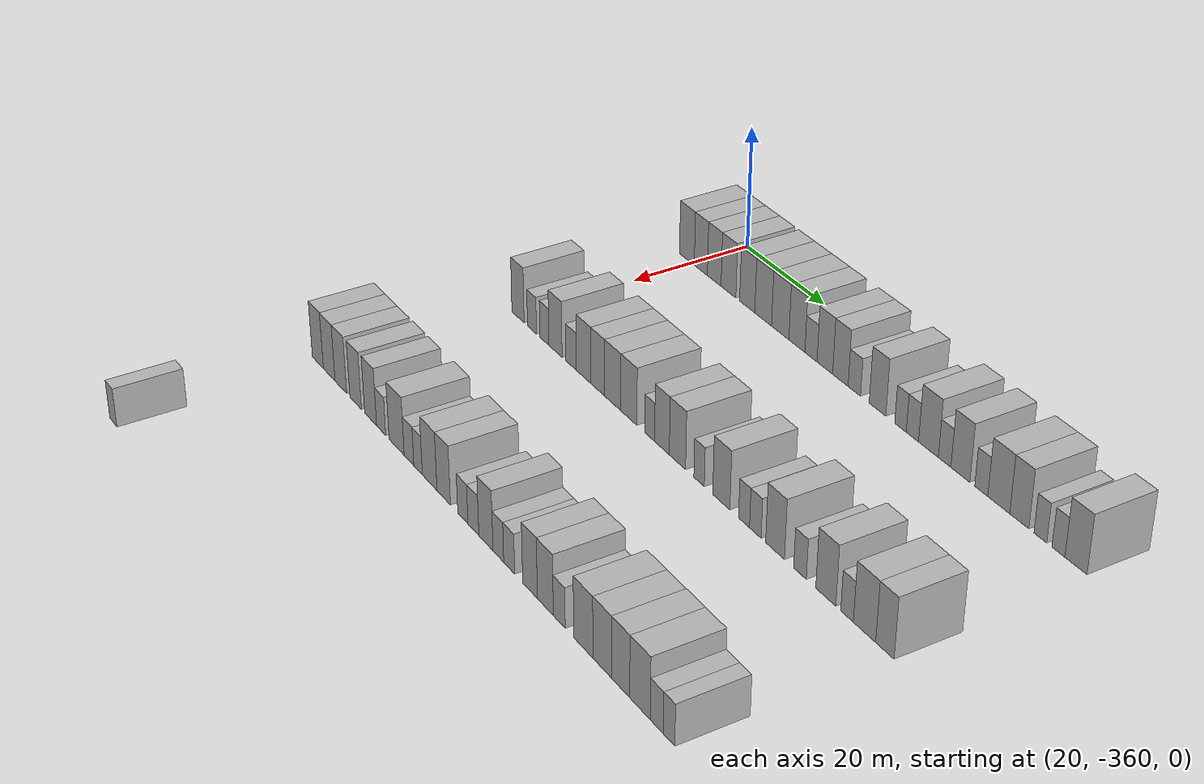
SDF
<sdf version="1.6">
 <world name="default">
  <model name="building_27">
   <static>1</static>
   <pose>25.0000 -361.5062 0 0.000000 0.000000 0.000000</pose>
   <link name="link">
    <pose>0 0 4.50 0 0 0</pose>
    <collision name="collision"><geometry><box><size>10.0000 4.1407 9.0000</size></box></geometry></collision>
    <visual name="visual">
     <cast_shadows>0</cast_shadows>
     <geometry><box><size>10.0000 4.1407 9.0000</size></box></geometry>
     <material>
      <script>
       <uri>model://HANNAS_wall/materials/scripts</uri>
       <uri>model://HANNAS_wall/materials/textures</uri>
       <name>vrc/HANNAS_wall</name>
      </script>
     </material>
    </visual>
   </link>
  </model>
  <model name="building_28">
   <static>1</static>
   <pose>25.0000 -357.6312 0 0.000000 0.000000 0.000000</pose>
   <link name="link">
    <pose>0 0 4.50 0 0 0</pose>
    <collision name="collision"><geometry><box><size>10.0000 3.6091 9.0000</size></box></geometry></collision>
    <visual name="visual">
     <cast_shadows>0</cast_shadows>
     <geometry><box><size>10.0000 3.6091 9.0000</size></box></geometry>
     <material>
      <script>
       <uri>model://HANNAS_wall/materials/scripts</uri>
       <uri>model://HANNAS_wall/materials/textures</uri>
       <name>vrc/HANNAS_wall</name>
      </script>
     </material>
    </visual>
   </link>
  </model>
  <model name="building_29">
   <static>1</static>
   <pose>25.0000 -353.9630 0 0.000000 0.000000 0.000000</pose>
   <link name="link">
    <pose>0 0 4.50 0 0 0</pose>
    <collision name="collision"><geometry><box><size>10.0000 3.7274 9.0000</size></box></geometry></collision>
    <visual name="visual">
     <cast_shadows>0</cast_shadows>
     <geometry><box><size>10.0000 3.7274 9.0000</size></box></geometry>
     <material>
      <script>
       <uri>model://HANNAS_wall/materials/scripts</uri>
       <uri>model://HANNAS_wall/materials/textures</uri>
       <name>vrc/HANNAS_wall</name>
      </script>
     </material>
    </visual>
   </link>
  </model>
  <model name="building_30">
   <static>1</static>
   <pose>25.0000 -350.1197 0 0.000000 0.000000 0.000000</pose>
   <link name="link">
    <pose>0 0 4.50 0 0 0</pose>
    <collision name="collision"><geometry><box><size>10.0000 3.9592 9.0000</size></box></geometry></collision>
    <visual name="visual">
     <cast_shadows>0</cast_shadows>
     <geometry><box><size>10.0000 3.9592 9.0000</size></box></geometry>
     <material>
      <script>
       <uri>model://HANNAS_wall/materials/scripts</uri>
       <uri>model://HANNAS_wall/materials/textures</uri>
       <name>vrc/HANNAS_wall</name>
      </script>
     </material>
    </visual>
   </link>
  </model>
  <model name="building_31">
   <static>1</static>
   <pose>25.0000 -345.1543 0 0.000000 0.000000 0.000000</pose>
   <link name="link">
    <pose>0 0 4.50 0 0 0</pose>
    <collision name="collision"><geometry><box><size>10.0000 3.9717 9.0000</size></box></geometry></collision>
    <visual name="visual">
     <cast_shadows>0</cast_shadows>
     <geometry><box><size>10.0000 3.9717 9.0000</size></box></geometry>
     <material>
      <script>
       <uri>model://HANNAS_wall/materials/scripts</uri>
       <uri>model://HANNAS_wall/materials/textures</uri>
       <name>vrc/HANNAS_wall</name>
      </script>
     </material>
    </visual>
   </link>
  </model>
  <model name="building_32">
   <static>1</static>
   <pose>25.0000 -341.0035 0 0.000000 0.000000 0.000000</pose>
   <link name="link">
    <pose>0 0 4.50 0 0 0</pose>
    <collision name="collision"><geometry><box><size>10.0000 4.3299 9.0000</size></box></geometry></collision>
    <visual name="visual">
     <cast_shadows>0</cast_shadows>
     <geometry><box><size>10.0000 4.3299 9.0000</size></box></geometry>
     <material>
      <script>
       <uri>model://HANNAS_wall/materials/scripts</uri>
       <uri>model://HANNAS_wall/materials/textures</uri>
       <name>vrc/HANNAS_wall</name>
      </script>
     </material>
    </visual>
   </link>
  </model>
  <model name="building_33">
   <static>1</static>
   <pose>25.0000 -336.6456 0 0.000000 0.000000 0.000000</pose>
   <link name="link">
    <pose>0 0 4.50 0 0 0</pose>
    <collision name="collision"><geometry><box><size>10.0000 4.3859 9.0000</size></box></geometry></collision>
    <visual name="visual">
     <cast_shadows>0</cast_shadows>
     <geometry><box><size>10.0000 4.3859 9.0000</size></box></geometry>
     <material>
      <script>
       <uri>model://HANNAS_wall/materials/scripts</uri>
       <uri>model://HANNAS_wall/materials/textures</uri>
       <name>vrc/HANNAS_wall</name>
      </script>
     </material>
    </visual>
   </link>
  </model>
  <model name="building_34">
   <static>1</static>
   <pose>25.0000 -332.4584 0 0.000000 0.000000 0.000000</pose>
   <link name="link">
    <pose>0 0 4.50 0 0 0</pose>
    <collision name="collision"><geometry><box><size>10.0000 3.9885 9.0000</size></box></geometry></collision>
    <visual name="visual">
     <cast_shadows>0</cast_shadows>
     <geometry><box><size>10.0000 3.9885 9.0000</size></box></geometry>
     <material>
      <script>
       <uri>model://HANNAS_wall/materials/scripts</uri>
       <uri>model://HANNAS_wall/materials/textures</uri>
       <name>vrc/HANNAS_wall</name>
      </script>
     </material>
    </visual>
   </link>
  </model>
  <model name="building_35">
   <static>1</static>
   <pose>25.0000 -328.9862 0 0.000000 0.000000 0.000000</pose>
   <link name="link">
    <pose>0 0 3.00 0 0 0</pose>
    <collision name="collision"><geometry><box><size>10.0000 2.9560 6.0000</size></box></geometry></collision>
    <visual name="visual">
     <cast_shadows>0</cast_shadows>
     <geometry><box><size>10.0000 2.9560 6.0000</size></box></geometry>
     <material>
      <script>
       <uri>model://HANNAS_wall/materials/scripts</uri>
       <uri>model://HANNAS_wall/materials/textures</uri>
       <name>vrc/HANNAS_wall</name>
      </script>
     </material>
    </visual>
   </link>
  </model>
  <model name="building_36">
   <static>1</static>
   <pose>25.0000 -325.6257 0 0.000000 0.000000 0.000000</pose>
   <link name="link">
    <pose>0 0 4.50 0 0 0</pose>
    <collision name="collision"><geometry><box><size>10.0000 3.7648 9.0000</size></box></geometry></collision>
    <visual name="visual">
     <cast_shadows>0</cast_shadows>
     <geometry><box><size>10.0000 3.7648 9.0000</size></box></geometry>
     <material>
      <script>
       <uri>model://HANNAS_wall/materials/scripts</uri>
       <uri>model://HANNAS_wall/materials/textures</uri>
       <name>vrc/HANNAS_wall</name>
      </script>
     </material>
    </visual>
   </link>
  </model>
  <model name="building_37">
   <static>1</static>
   <pose>25.0000 -321.9064 0 0.000000 0.000000 0.000000</pose>
   <link name="link">
    <pose>0 0 4.50 0 0 0</pose>
    <collision name="collision"><geometry><box><size>10.0000 3.6739 9.0000</size></box></geometry></collision>
    <visual name="visual">
     <cast_shadows>0</cast_shadows>
     <geometry><box><size>10.0000 3.6739 9.0000</size></box></geometry>
     <material>
      <script>
       <uri>model://HANNAS_wall/materials/scripts</uri>
       <uri>model://HANNAS_wall/materials/textures</uri>
       <name>vrc/HANNAS_wall</name>
      </script>
     </material>
    </visual>
   </link>
  </model>
  <model name="building_38">
   <static>1</static>
   <pose>25.0000 -318.6146 0 0.000000 0.000000 0.000000</pose>
   <link name="link">
    <pose>0 0 3.00 0 0 0</pose>
    <collision name="collision"><geometry><box><size>10.0000 2.9097 6.0000</size></box></geometry></collision>
    <visual name="visual">
     <cast_shadows>0</cast_shadows>
     <geometry><box><size>10.0000 2.9097 6.0000</size></box></geometry>
     <material>
      <script>
       <uri>model://HANNAS_wall/materials/scripts</uri>
       <uri>model://HANNAS_wall/materials/textures</uri>
       <name>vrc/HANNAS_wall</name>
      </script>
     </material>
    </visual>
   </link>
  </model>
  <model name="building_39">
   <static>1</static>
   <pose>25.0000 -313.2614 0 0.000000 0.000000 0.000000</pose>
   <link name="link">
    <pose>0 0 4.50 0 0 0</pose>
    <collision name="collision"><geometry><box><size>10.0000 3.7967 9.0000</size></box></geometry></collision>
    <visual name="visual">
     <cast_shadows>0</cast_shadows>
     <geometry><box><size>10.0000 3.7967 9.0000</size></box></geometry>
     <material>
      <script>
       <uri>model://HANNAS_wall/materials/scripts</uri>
       <uri>model://HANNAS_wall/materials/textures</uri>
       <name>vrc/HANNAS_wall</name>
      </script>
     </material>
    </visual>
   </link>
  </model>
  <model name="building_40">
   <static>1</static>
   <pose>25.0000 -308.0791 0 0.000000 0.000000 0.000000</pose>
   <link name="link">
    <pose>0 0 3.00 0 0 0</pose>
    <collision name="collision"><geometry><box><size>10.0000 2.5677 6.0000</size></box></geometry></collision>
    <visual name="visual">
     <cast_shadows>0</cast_shadows>
     <geometry><box><size>10.0000 2.5677 6.0000</size></box></geometry>
     <material>
      <script>
       <uri>model://HANNAS_wall/materials/scripts</uri>
       <uri>model://HANNAS_wall/materials/textures</uri>
       <name>vrc/HANNAS_wall</name>
      </script>
     </material>
    </visual>
   </link>
  </model>
  <model name="building_41">
   <static>1</static>
   <pose>25.0000 -305.4399 0 0.000000 0.000000 0.000000</pose>
   <link name="link">
    <pose>0 0 3.00 0 0 0</pose>
    <collision name="collision"><geometry><box><size>10.0000 2.7108 6.0000</size></box></geometry></collision>
    <visual name="visual">
     <cast_shadows>0</cast_shadows>
     <geometry><box><size>10.0000 2.7108 6.0000</size></box></geometry>
     <material>
      <script>
       <uri>model://HANNAS_wall/materials/scripts</uri>
       <uri>model://HANNAS_wall/materials/textures</uri>
       <name>vrc/HANNAS_wall</name>
      </script>
     </material>
    </visual>
   </link>
  </model>
  <model name="building_42">
   <static>1</static>
   <pose>25.0000 -301.9377 0 0.000000 0.000000 0.000000</pose>
   <link name="link">
    <pose>0 0 4.50 0 0 0</pose>
    <collision name="collision"><geometry><box><size>10.0000 4.2936 9.0000</size></box></geometry></collision>
    <visual name="visual">
     <cast_shadows>0</cast_shadows>
     <geometry><box><size>10.0000 4.2936 9.0000</size></box></geometry>
     <material>
      <script>
       <uri>model://HANNAS_wall/materials/scripts</uri>
       <uri>model://HANNAS_wall/materials/textures</uri>
       <name>vrc/HANNAS_wall</name>
      </script>
     </material>
    </visual>
   </link>
  </model>
  <model name="building_43">
   <static>1</static>
   <pose>25.0000 -298.4554 0 0.000000 0.000000 0.000000</pose>
   <link name="link">
    <pose>0 0 3.00 0 0 0</pose>
    <collision name="collision"><geometry><box><size>10.0000 2.6709 6.0000</size></box></geometry></collision>
    <visual name="visual">
     <cast_shadows>0</cast_shadows>
     <geometry><box><size>10.0000 2.6709 6.0000</size></box></geometry>
     <material>
      <script>
       <uri>model://HANNAS_wall/materials/scripts</uri>
       <uri>model://HANNAS_wall/materials/textures</uri>
       <name>vrc/HANNAS_wall</name>
      </script>
     </material>
    </visual>
   </link>
  </model>
  <model name="building_44">
   <static>1</static>
   <pose>25.0000 -295.1273 0 0.000000 0.000000 0.000000</pose>
   <link name="link">
    <pose>0 0 4.50 0 0 0</pose>
    <collision name="collision"><geometry><box><size>10.0000 3.9854 9.0000</size></box></geometry></collision>
    <visual name="visual">
     <cast_shadows>0</cast_shadows>
     <geometry><box><size>10.0000 3.9854 9.0000</size></box></geometry>
     <material>
      <script>
       <uri>model://HANNAS_wall/materials/scripts</uri>
       <uri>model://HANNAS_wall/materials/textures</uri>
       <name>vrc/HANNAS_wall</name>
      </script>
     </material>
    </visual>
   </link>
  </model>
  <model name="building_45">
   <static>1</static>
   <pose>25.0000 -290.7953 0 0.000000 0.000000 0.000000</pose>
   <link name="link">
    <pose>0 0 3.00 0 0 0</pose>
    <collision name="collision"><geometry><box><size>10.0000 2.6784 6.0000</size></box></geometry></collision>
    <visual name="visual">
     <cast_shadows>0</cast_shadows>
     <geometry><box><size>10.0000 2.6784 6.0000</size></box></geometry>
     <material>
      <script>
       <uri>model://HANNAS_wall/materials/scripts</uri>
       <uri>model://HANNAS_wall/materials/textures</uri>
       <name>vrc/HANNAS_wall</name>
      </script>
     </material>
    </visual>
   </link>
  </model>
  <model name="building_46">
   <static>1</static>
   <pose>25.0000 -287.2370 0 0.000000 0.000000 0.000000</pose>
   <link name="link">
    <pose>0 0 4.50 0 0 0</pose>
    <collision name="collision"><geometry><box><size>10.0000 4.4383 9.0000</size></box></geometry></collision>
    <visual name="visual">
     <cast_shadows>0</cast_shadows>
     <geometry><box><size>10.0000 4.4383 9.0000</size></box></geometry>
     <material>
      <script>
       <uri>model://HANNAS_wall/materials/scripts</uri>
       <uri>model://HANNAS_wall/materials/textures</uri>
       <name>vrc/HANNAS_wall</name>
      </script>
     </material>
    </visual>
   </link>
  </model>
  <model name="building_47">
   <static>1</static>
   <pose>25.0000 -283.1209 0 0.000000 0.000000 0.000000</pose>
   <link name="link">
    <pose>0 0 4.50 0 0 0</pose>
    <collision name="collision"><geometry><box><size>10.0000 3.7939 9.0000</size></box></geometry></collision>
    <visual name="visual">
     <cast_shadows>0</cast_shadows>
     <geometry><box><size>10.0000 3.7939 9.0000</size></box></geometry>
     <material>
      <script>
       <uri>model://HANNAS_wall/materials/scripts</uri>
       <uri>model://HANNAS_wall/materials/textures</uri>
       <name>vrc/HANNAS_wall</name>
      </script>
     </material>
    </visual>
   </link>
  </model>
  <model name="building_48">
   <static>1</static>
   <pose>25.0000 -278.9808 0 0.000000 0.000000 0.000000</pose>
   <link name="link">
    <pose>0 0 3.00 0 0 0</pose>
    <collision name="collision"><geometry><box><size>10.0000 2.4862 6.0000</size></box></geometry></collision>
    <visual name="visual">
     <cast_shadows>0</cast_shadows>
     <geometry><box><size>10.0000 2.4862 6.0000</size></box></geometry>
     <material>
      <script>
       <uri>model://HANNAS_wall/materials/scripts</uri>
       <uri>model://HANNAS_wall/materials/textures</uri>
       <name>vrc/HANNAS_wall</name>
      </script>
     </material>
    </visual>
   </link>
  </model>
  <model name="building_49">
   <static>1</static>
   <pose>25.0000 -275.5052 0 0.000000 0.000000 0.000000</pose>
   <link name="link">
    <pose>0 0 3.00 0 0 0</pose>
    <collision name="collision"><geometry><box><size>10.0000 2.4652 6.0000</size></box></geometry></collision>
    <visual name="visual">
     <cast_shadows>0</cast_shadows>
     <geometry><box><size>10.0000 2.4652 6.0000</size></box></geometry>
     <material>
      <script>
       <uri>model://HANNAS_wall/materials/scripts</uri>
       <uri>model://HANNAS_wall/materials/textures</uri>
       <name>vrc/HANNAS_wall</name>
      </script>
     </material>
    </visual>
   </link>
  </model>
  <model name="building_50">
   <static>1</static>
   <pose>25.0000 -272.1948 0 0.000000 0.000000 0.000000</pose>
   <link name="link">
    <pose>0 0 4.50 0 0 0</pose>
    <collision name="collision"><geometry><box><size>10.0000 4.1556 9.0000</size></box></geometry></collision>
    <visual name="visual">
     <cast_shadows>0</cast_shadows>
     <geometry><box><size>10.0000 4.1556 9.0000</size></box></geometry>
     <material>
      <script>
       <uri>model://HANNAS_wall/materials/scripts</uri>
       <uri>model://HANNAS_wall/materials/textures</uri>
       <name>vrc/HANNAS_wall</name>
      </script>
     </material>
    </visual>
   </link>
  </model>
  <model name="building_258">
   <static>1</static>
   <pose>55.0000 -359.5012 0 0.000000 0.000000 0.000000</pose>
   <link name="link">
    <pose>0 0 4.50 0 0 0</pose>
    <collision name="collision"><geometry><box><size>10.0000 3.6256 9.0000</size></box></geometry></collision>
    <visual name="visual">
     <cast_shadows>0</cast_shadows>
     <geometry><box><size>10.0000 3.6256 9.0000</size></box></geometry>
     <material>
      <script>
       <uri>model://HANNAS_wall/materials/scripts</uri>
       <uri>model://HANNAS_wall/materials/textures</uri>
       <name>vrc/HANNAS_wall</name>
      </script>
     </material>
    </visual>
   </link>
  </model>
  <model name="building_259">
   <static>1</static>
   <pose>55.0000 -355.3773 0 0.000000 0.000000 0.000000</pose>
   <link name="link">
    <pose>0 0 3.00 0 0 0</pose>
    <collision name="collision"><geometry><box><size>10.0000 2.6221 6.0000</size></box></geometry></collision>
    <visual name="visual">
     <cast_shadows>0</cast_shadows>
     <geometry><box><size>10.0000 2.6221 6.0000</size></box></geometry>
     <material>
      <script>
       <uri>model://HANNAS_wall/materials/scripts</uri>
       <uri>model://HANNAS_wall/materials/textures</uri>
       <name>vrc/HANNAS_wall</name>
      </script>
     </material>
    </visual>
   </link>
  </model>
  <model name="building_260">
   <static>1</static>
   <pose>55.0000 -351.7692 0 0.000000 0.000000 0.000000</pose>
   <link name="link">
    <pose>0 0 3.00 0 0 0</pose>
    <collision name="collision"><geometry><box><size>10.0000 2.5942 6.0000</size></box></geometry></collision>
    <visual name="visual">
     <cast_shadows>0</cast_shadows>
     <geometry><box><size>10.0000 2.5942 6.0000</size></box></geometry>
     <material>
      <script>
       <uri>model://HANNAS_wall/materials/scripts</uri>
       <uri>model://HANNAS_wall/materials/textures</uri>
       <name>vrc/HANNAS_wall</name>
      </script>
     </material>
    </visual>
   </link>
  </model>
  <model name="building_261">
   <static>1</static>
   <pose>55.0000 -348.5897 0 0.000000 0.000000 0.000000</pose>
   <link name="link">
    <pose>0 0 4.50 0 0 0</pose>
    <collision name="collision"><geometry><box><size>10.0000 3.7648 9.0000</size></box></geometry></collision>
    <visual name="visual">
     <cast_shadows>0</cast_shadows>
     <geometry><box><size>10.0000 3.7648 9.0000</size></box></geometry>
     <material>
      <script>
       <uri>model://HANNAS_wall/materials/scripts</uri>
       <uri>model://HANNAS_wall/materials/textures</uri>
       <name>vrc/HANNAS_wall</name>
      </script>
     </material>
    </visual>
   </link>
  </model>
  <model name="building_262">
   <static>1</static>
   <pose>55.0000 -344.2099 0 0.000000 0.000000 0.000000</pose>
   <link name="link">
    <pose>0 0 3.00 0 0 0</pose>
    <collision name="collision"><geometry><box><size>10.0000 2.9947 6.0000</size></box></geometry></collision>
    <visual name="visual">
     <cast_shadows>0</cast_shadows>
     <geometry><box><size>10.0000 2.9947 6.0000</size></box></geometry>
     <material>
      <script>
       <uri>model://HANNAS_wall/materials/scripts</uri>
       <uri>model://HANNAS_wall/materials/textures</uri>
       <name>vrc/HANNAS_wall</name>
      </script>
     </material>
    </visual>
   </link>
  </model>
  <model name="building_263">
   <static>1</static>
   <pose>55.0000 -340.7199 0 0.000000 0.000000 0.000000</pose>
   <link name="link">
    <pose>0 0 4.50 0 0 0</pose>
    <collision name="collision"><geometry><box><size>10.0000 3.9853 9.0000</size></box></geometry></collision>
    <visual name="visual">
     <cast_shadows>0</cast_shadows>
     <geometry><box><size>10.0000 3.9853 9.0000</size></box></geometry>
     <material>
      <script>
       <uri>model://HANNAS_wall/materials/scripts</uri>
       <uri>model://HANNAS_wall/materials/textures</uri>
       <name>vrc/HANNAS_wall</name>
      </script>
     </material>
    </visual>
   </link>
  </model>
  <model name="building_264">
   <static>1</static>
   <pose>55.0000 -336.8730 0 0.000000 0.000000 0.000000</pose>
   <link name="link">
    <pose>0 0 4.50 0 0 0</pose>
    <collision name="collision"><geometry><box><size>10.0000 3.7086 9.0000</size></box></geometry></collision>
    <visual name="visual">
     <cast_shadows>0</cast_shadows>
     <geometry><box><size>10.0000 3.7086 9.0000</size></box></geometry>
     <material>
      <script>
       <uri>model://HANNAS_wall/materials/scripts</uri>
       <uri>model://HANNAS_wall/materials/textures</uri>
       <name>vrc/HANNAS_wall</name>
      </script>
     </material>
    </visual>
   </link>
  </model>
  <model name="building_265">
   <static>1</static>
   <pose>55.0000 -332.8600 0 0.000000 0.000000 0.000000</pose>
   <link name="link">
    <pose>0 0 4.50 0 0 0</pose>
    <collision name="collision"><geometry><box><size>10.0000 4.3174 9.0000</size></box></geometry></collision>
    <visual name="visual">
     <cast_shadows>0</cast_shadows>
     <geometry><box><size>10.0000 4.3174 9.0000</size></box></geometry>
     <material>
      <script>
       <uri>model://HANNAS_wall/materials/scripts</uri>
       <uri>model://HANNAS_wall/materials/textures</uri>
       <name>vrc/HANNAS_wall</name>
      </script>
     </material>
    </visual>
   </link>
  </model>
  <model name="building_266">
   <static>1</static>
   <pose>55.0000 -328.6119 0 0.000000 0.000000 0.000000</pose>
   <link name="link">
    <pose>0 0 4.50 0 0 0</pose>
    <collision name="collision"><geometry><box><size>10.0000 4.1789 9.0000</size></box></geometry></collision>
    <visual name="visual">
     <cast_shadows>0</cast_shadows>
     <geometry><box><size>10.0000 4.1789 9.0000</size></box></geometry>
     <material>
      <script>
       <uri>model://HANNAS_wall/materials/scripts</uri>
       <uri>model://HANNAS_wall/materials/textures</uri>
       <name>vrc/HANNAS_wall</name>
      </script>
     </material>
    </visual>
   </link>
  </model>
  <model name="building_267">
   <static>1</static>
   <pose>55.0000 -323.2601 0 0.000000 0.000000 0.000000</pose>
   <link name="link">
    <pose>0 0 3.00 0 0 0</pose>
    <collision name="collision"><geometry><box><size>10.0000 2.5246 6.0000</size></box></geometry></collision>
    <visual name="visual">
     <cast_shadows>0</cast_shadows>
     <geometry><box><size>10.0000 2.5246 6.0000</size></box></geometry>
     <material>
      <script>
       <uri>model://HANNAS_wall/materials/scripts</uri>
       <uri>model://HANNAS_wall/materials/textures</uri>
       <name>vrc/HANNAS_wall</name>
      </script>
     </material>
    </visual>
   </link>
  </model>
  <model name="building_268">
   <static>1</static>
   <pose>55.0000 -320.1571 0 0.000000 0.000000 0.000000</pose>
   <link name="link">
    <pose>0 0 4.50 0 0 0</pose>
    <collision name="collision"><geometry><box><size>10.0000 3.6814 9.0000</size></box></geometry></collision>
    <visual name="visual">
     <cast_shadows>0</cast_shadows>
     <geometry><box><size>10.0000 3.6814 9.0000</size></box></geometry>
     <material>
      <script>
       <uri>model://HANNAS_wall/materials/scripts</uri>
       <uri>model://HANNAS_wall/materials/textures</uri>
       <name>vrc/HANNAS_wall</name>
      </script>
     </material>
    </visual>
   </link>
  </model>
  <model name="building_269">
   <static>1</static>
   <pose>55.0000 -316.3114 0 0.000000 0.000000 0.000000</pose>
   <link name="link">
    <pose>0 0 4.50 0 0 0</pose>
    <collision name="collision"><geometry><box><size>10.0000 4.0102 9.0000</size></box></geometry></collision>
    <visual name="visual">
     <cast_shadows>0</cast_shadows>
     <geometry><box><size>10.0000 4.0102 9.0000</size></box></geometry>
     <material>
      <script>
       <uri>model://HANNAS_wall/materials/scripts</uri>
       <uri>model://HANNAS_wall/materials/textures</uri>
       <name>vrc/HANNAS_wall</name>
      </script>
     </material>
    </visual>
   </link>
  </model>
  <model name="building_270">
   <static>1</static>
   <pose>55.0000 -311.0490 0 0.000000 0.000000 0.000000</pose>
   <link name="link">
    <pose>0 0 3.00 0 0 0</pose>
    <collision name="collision"><geometry><box><size>10.0000 2.5146 6.0000</size></box></geometry></collision>
    <visual name="visual">
     <cast_shadows>0</cast_shadows>
     <geometry><box><size>10.0000 2.5146 6.0000</size></box></geometry>
     <material>
      <script>
       <uri>model://HANNAS_wall/materials/scripts</uri>
       <uri>model://HANNAS_wall/materials/textures</uri>
       <name>vrc/HANNAS_wall</name>
      </script>
     </material>
    </visual>
   </link>
  </model>
  <model name="building_271">
   <static>1</static>
   <pose>55.0000 -305.7863 0 0.000000 0.000000 0.000000</pose>
   <link name="link">
    <pose>0 0 4.50 0 0 0</pose>
    <collision name="collision"><geometry><box><size>10.0000 4.0108 9.0000</size></box></geometry></collision>
    <visual name="visual">
     <cast_shadows>0</cast_shadows>
     <geometry><box><size>10.0000 4.0108 9.0000</size></box></geometry>
     <material>
      <script>
       <uri>model://HANNAS_wall/materials/scripts</uri>
       <uri>model://HANNAS_wall/materials/textures</uri>
       <name>vrc/HANNAS_wall</name>
      </script>
     </material>
    </visual>
   </link>
  </model>
  <model name="building_272">
   <static>1</static>
   <pose>55.0000 -300.5261 0 0.000000 0.000000 0.000000</pose>
   <link name="link">
    <pose>0 0 3.00 0 0 0</pose>
    <collision name="collision"><geometry><box><size>10.0000 2.5096 6.0000</size></box></geometry></collision>
    <visual name="visual">
     <cast_shadows>0</cast_shadows>
     <geometry><box><size>10.0000 2.5096 6.0000</size></box></geometry>
     <material>
      <script>
       <uri>model://HANNAS_wall/materials/scripts</uri>
       <uri>model://HANNAS_wall/materials/textures</uri>
       <name>vrc/HANNAS_wall</name>
      </script>
     </material>
    </visual>
   </link>
  </model>
  <model name="building_273">
   <static>1</static>
   <pose>55.0000 -297.9641 0 0.000000 0.000000 0.000000</pose>
   <link name="link">
    <pose>0 0 3.00 0 0 0</pose>
    <collision name="collision"><geometry><box><size>10.0000 2.6144 6.0000</size></box></geometry></collision>
    <visual name="visual">
     <cast_shadows>0</cast_shadows>
     <geometry><box><size>10.0000 2.6144 6.0000</size></box></geometry>
     <material>
      <script>
       <uri>model://HANNAS_wall/materials/scripts</uri>
       <uri>model://HANNAS_wall/materials/textures</uri>
       <name>vrc/HANNAS_wall</name>
      </script>
     </material>
    </visual>
   </link>
  </model>
  <model name="building_274">
   <static>1</static>
   <pose>55.0000 -293.5788 0 0.000000 0.000000 0.000000</pose>
   <link name="link">
    <pose>0 0 4.50 0 0 0</pose>
    <collision name="collision"><geometry><box><size>10.0000 4.1561 9.0000</size></box></geometry></collision>
    <visual name="visual">
     <cast_shadows>0</cast_shadows>
     <geometry><box><size>10.0000 4.1561 9.0000</size></box></geometry>
     <material>
      <script>
       <uri>model://HANNAS_wall/materials/scripts</uri>
       <uri>model://HANNAS_wall/materials/textures</uri>
       <name>vrc/HANNAS_wall</name>
      </script>
     </material>
    </visual>
   </link>
  </model>
  <model name="building_275">
   <static>1</static>
   <pose>55.0000 -288.1398 0 0.000000 0.000000 0.000000</pose>
   <link name="link">
    <pose>0 0 3.00 0 0 0</pose>
    <collision name="collision"><geometry><box><size>10.0000 2.7219 6.0000</size></box></geometry></collision>
    <visual name="visual">
     <cast_shadows>0</cast_shadows>
     <geometry><box><size>10.0000 2.7219 6.0000</size></box></geometry>
     <material>
      <script>
       <uri>model://HANNAS_wall/materials/scripts</uri>
       <uri>model://HANNAS_wall/materials/textures</uri>
       <name>vrc/HANNAS_wall</name>
      </script>
     </material>
    </visual>
   </link>
  </model>
  <model name="building_276">
   <static>1</static>
   <pose>55.0000 -282.6835 0 0.000000 0.000000 0.000000</pose>
   <link name="link">
    <pose>0 0 4.50 0 0 0</pose>
    <collision name="collision"><geometry><box><size>10.0000 4.1908 9.0000</size></box></geometry></collision>
    <visual name="visual">
     <cast_shadows>0</cast_shadows>
     <geometry><box><size>10.0000 4.1908 9.0000</size></box></geometry>
     <material>
      <script>
       <uri>model://HANNAS_wall/materials/scripts</uri>
       <uri>model://HANNAS_wall/materials/textures</uri>
       <name>vrc/HANNAS_wall</name>
      </script>
     </material>
    </visual>
   </link>
  </model>
  <model name="building_277">
   <static>1</static>
   <pose>55.0000 -278.2982 0 0.000000 0.000000 0.000000</pose>
   <link name="link">
    <pose>0 0 3.00 0 0 0</pose>
    <collision name="collision"><geometry><box><size>10.0000 2.5797 6.0000</size></box></geometry></collision>
    <visual name="visual">
     <cast_shadows>0</cast_shadows>
     <geometry><box><size>10.0000 2.5797 6.0000</size></box></geometry>
     <material>
      <script>
       <uri>model://HANNAS_wall/materials/scripts</uri>
       <uri>model://HANNAS_wall/materials/textures</uri>
       <name>vrc/HANNAS_wall</name>
      </script>
     </material>
    </visual>
   </link>
  </model>
  <model name="building_278">
   <static>1</static>
   <pose>55.0000 -274.7682 0 0.000000 0.000000 0.000000</pose>
   <link name="link">
    <pose>0 0 4.50 0 0 0</pose>
    <collision name="collision"><geometry><box><size>10.0000 4.4804 9.0000</size></box></geometry></collision>
    <visual name="visual">
     <cast_shadows>0</cast_shadows>
     <geometry><box><size>10.0000 4.4804 9.0000</size></box></geometry>
     <material>
      <script>
       <uri>model://HANNAS_wall/materials/scripts</uri>
       <uri>model://HANNAS_wall/materials/textures</uri>
       <name>vrc/HANNAS_wall</name>
      </script>
     </material>
    </visual>
   </link>
  </model>
  <model name="building_279">
   <static>1</static>
   <pose>55.0000 -270.7183 0 0.000000 0.000000 0.000000</pose>
   <link name="link">
    <pose>0 0 4.50 0 0 0</pose>
    <collision name="collision"><geometry><box><size>10.0000 3.6192 9.0000</size></box></geometry></collision>
    <visual name="visual">
     <cast_shadows>0</cast_shadows>
     <geometry><box><size>10.0000 3.6192 9.0000</size></box></geometry>
     <material>
      <script>
       <uri>model://HANNAS_wall/materials/scripts</uri>
       <uri>model://HANNAS_wall/materials/textures</uri>
       <name>vrc/HANNAS_wall</name>
      </script>
     </material>
    </visual>
   </link>
  </model>
  <model name="building_480">
   <static>1</static>
   <pose>85.0000 -362.8318 0 0.000000 0.000000 0.000000</pose>
   <link name="link">
    <pose>0 0 4.50 0 0 0</pose>
    <collision name="collision"><geometry><box><size>10.0000 3.6292 9.0000</size></box></geometry></collision>
    <visual name="visual">
     <cast_shadows>0</cast_shadows>
     <geometry><box><size>10.0000 3.6292 9.0000</size></box></geometry>
     <material>
      <script>
       <uri>model://HANNAS_wall/materials/scripts</uri>
       <uri>model://HANNAS_wall/materials/textures</uri>
       <name>vrc/HANNAS_wall</name>
      </script>
     </material>
    </visual>
   </link>
  </model>
  <model name="building_481">
   <static>1</static>
   <pose>85.0000 -359.1234 0 0.000000 0.000000 0.000000</pose>
   <link name="link">
    <pose>0 0 4.50 0 0 0</pose>
    <collision name="collision"><geometry><box><size>10.0000 3.7874 9.0000</size></box></geometry></collision>
    <visual name="visual">
     <cast_shadows>0</cast_shadows>
     <geometry><box><size>10.0000 3.7874 9.0000</size></box></geometry>
     <material>
      <script>
       <uri>model://HANNAS_wall/materials/scripts</uri>
       <uri>model://HANNAS_wall/materials/textures</uri>
       <name>vrc/HANNAS_wall</name>
      </script>
     </material>
    </visual>
   </link>
  </model>
  <model name="building_482">
   <static>1</static>
   <pose>85.0000 -355.3558 0 0.000000 0.000000 0.000000</pose>
   <link name="link">
    <pose>0 0 4.50 0 0 0</pose>
    <collision name="collision"><geometry><box><size>10.0000 3.7479 9.0000</size></box></geometry></collision>
    <visual name="visual">
     <cast_shadows>0</cast_shadows>
     <geometry><box><size>10.0000 3.7479 9.0000</size></box></geometry>
     <material>
      <script>
       <uri>model://HANNAS_wall/materials/scripts</uri>
       <uri>model://HANNAS_wall/materials/textures</uri>
       <name>vrc/HANNAS_wall</name>
      </script>
     </material>
    </visual>
   </link>
  </model>
  <model name="building_483">
   <static>1</static>
   <pose>85.0000 -350.6639 0 0.000000 0.000000 0.000000</pose>
   <link name="link">
    <pose>0 0 4.50 0 0 0</pose>
    <collision name="collision"><geometry><box><size>10.0000 3.6357 9.0000</size></box></geometry></collision>
    <visual name="visual">
     <cast_shadows>0</cast_shadows>
     <geometry><box><size>10.0000 3.6357 9.0000</size></box></geometry>
     <material>
      <script>
       <uri>model://HANNAS_wall/materials/scripts</uri>
       <uri>model://HANNAS_wall/materials/textures</uri>
       <name>vrc/HANNAS_wall</name>
      </script>
     </material>
    </visual>
   </link>
  </model>
  <model name="building_484">
   <static>1</static>
   <pose>85.0000 -346.0174 0 0.000000 0.000000 0.000000</pose>
   <link name="link">
    <pose>0 0 4.50 0 0 0</pose>
    <collision name="collision"><geometry><box><size>10.0000 3.6574 9.0000</size></box></geometry></collision>
    <visual name="visual">
     <cast_shadows>0</cast_shadows>
     <geometry><box><size>10.0000 3.6574 9.0000</size></box></geometry>
     <material>
      <script>
       <uri>model://HANNAS_wall/materials/scripts</uri>
       <uri>model://HANNAS_wall/materials/textures</uri>
       <name>vrc/HANNAS_wall</name>
      </script>
     </material>
    </visual>
   </link>
  </model>
  <model name="building_485">
   <static>1</static>
   <pose>85.0000 -342.7969 0 0.000000 0.000000 0.000000</pose>
   <link name="link">
    <pose>0 0 3.00 0 0 0</pose>
    <collision name="collision"><geometry><box><size>10.0000 2.7836 6.0000</size></box></geometry></collision>
    <visual name="visual">
     <cast_shadows>0</cast_shadows>
     <geometry><box><size>10.0000 2.7836 6.0000</size></box></geometry>
     <material>
      <script>
       <uri>model://HANNAS_wall/materials/scripts</uri>
       <uri>model://HANNAS_wall/materials/textures</uri>
       <name>vrc/HANNAS_wall</name>
      </script>
     </material>
    </visual>
   </link>
  </model>
  <model name="building_486">
   <static>1</static>
   <pose>85.0000 -338.1726 0 0.000000 0.000000 0.000000</pose>
   <link name="link">
    <pose>0 0 4.50 0 0 0</pose>
    <collision name="collision"><geometry><box><size>10.0000 4.4650 9.0000</size></box></geometry></collision>
    <visual name="visual">
     <cast_shadows>0</cast_shadows>
     <geometry><box><size>10.0000 4.4650 9.0000</size></box></geometry>
     <material>
      <script>
       <uri>model://HANNAS_wall/materials/scripts</uri>
       <uri>model://HANNAS_wall/materials/textures</uri>
       <name>vrc/HANNAS_wall</name>
      </script>
     </material>
    </visual>
   </link>
  </model>
  <model name="building_487">
   <static>1</static>
   <pose>85.0000 -334.5316 0 0.000000 0.000000 0.000000</pose>
   <link name="link">
    <pose>0 0 3.00 0 0 0</pose>
    <collision name="collision"><geometry><box><size>10.0000 2.8170 6.0000</size></box></geometry></collision>
    <visual name="visual">
     <cast_shadows>0</cast_shadows>
     <geometry><box><size>10.0000 2.8170 6.0000</size></box></geometry>
     <material>
      <script>
       <uri>model://HANNAS_wall/materials/scripts</uri>
       <uri>model://HANNAS_wall/materials/textures</uri>
       <name>vrc/HANNAS_wall</name>
      </script>
     </material>
    </visual>
   </link>
  </model>
  <model name="building_488">
   <static>1</static>
   <pose>85.0000 -331.8985 0 0.000000 0.000000 0.000000</pose>
   <link name="link">
    <pose>0 0 3.00 0 0 0</pose>
    <collision name="collision"><geometry><box><size>10.0000 2.4492 6.0000</size></box></geometry></collision>
    <visual name="visual">
     <cast_shadows>0</cast_shadows>
     <geometry><box><size>10.0000 2.4492 6.0000</size></box></geometry>
     <material>
      <script>
       <uri>model://HANNAS_wall/materials/scripts</uri>
       <uri>model://HANNAS_wall/materials/textures</uri>
       <name>vrc/HANNAS_wall</name>
      </script>
     </material>
    </visual>
   </link>
  </model>
  <model name="building_489">
   <static>1</static>
   <pose>85.0000 -328.5956 0 0.000000 0.000000 0.000000</pose>
   <link name="link">
    <pose>0 0 4.50 0 0 0</pose>
    <collision name="collision"><geometry><box><size>10.0000 4.1567 9.0000</size></box></geometry></collision>
    <visual name="visual">
     <cast_shadows>0</cast_shadows>
     <geometry><box><size>10.0000 4.1567 9.0000</size></box></geometry>
     <material>
      <script>
       <uri>model://HANNAS_wall/materials/scripts</uri>
       <uri>model://HANNAS_wall/materials/textures</uri>
       <name>vrc/HANNAS_wall</name>
      </script>
     </material>
    </visual>
   </link>
  </model>
  <model name="building_490">
   <static>1</static>
   <pose>85.0000 -324.6471 0 0.000000 0.000000 0.000000</pose>
   <link name="link">
    <pose>0 0 4.50 0 0 0</pose>
    <collision name="collision"><geometry><box><size>10.0000 3.7403 9.0000</size></box></geometry></collision>
    <visual name="visual">
     <cast_shadows>0</cast_shadows>
     <geometry><box><size>10.0000 3.7403 9.0000</size></box></geometry>
     <material>
      <script>
       <uri>model://HANNAS_wall/materials/scripts</uri>
       <uri>model://HANNAS_wall/materials/textures</uri>
       <name>vrc/HANNAS_wall</name>
      </script>
     </material>
    </visual>
   </link>
  </model>
  <model name="building_491">
   <static>1</static>
   <pose>85.0000 -319.4032 0 0.000000 0.000000 0.000000</pose>
   <link name="link">
    <pose>0 0 3.00 0 0 0</pose>
    <collision name="collision"><geometry><box><size>10.0000 2.7474 6.0000</size></box></geometry></collision>
    <visual name="visual">
     <cast_shadows>0</cast_shadows>
     <geometry><box><size>10.0000 2.7474 6.0000</size></box></geometry>
     <material>
      <script>
       <uri>model://HANNAS_wall/materials/scripts</uri>
       <uri>model://HANNAS_wall/materials/textures</uri>
       <name>vrc/HANNAS_wall</name>
      </script>
     </material>
    </visual>
   </link>
  </model>
  <model name="building_492">
   <static>1</static>
   <pose>85.0000 -316.5611 0 0.000000 0.000000 0.000000</pose>
   <link name="link">
    <pose>0 0 3.00 0 0 0</pose>
    <collision name="collision"><geometry><box><size>10.0000 2.9368 6.0000</size></box></geometry></collision>
    <visual name="visual">
     <cast_shadows>0</cast_shadows>
     <geometry><box><size>10.0000 2.9368 6.0000</size></box></geometry>
     <material>
      <script>
       <uri>model://HANNAS_wall/materials/scripts</uri>
       <uri>model://HANNAS_wall/materials/textures</uri>
       <name>vrc/HANNAS_wall</name>
      </script>
     </material>
    </visual>
   </link>
  </model>
  <model name="building_493">
   <static>1</static>
   <pose>85.0000 -313.2331 0 0.000000 0.000000 0.000000</pose>
   <link name="link">
    <pose>0 0 4.50 0 0 0</pose>
    <collision name="collision"><geometry><box><size>10.0000 3.7192 9.0000</size></box></geometry></collision>
    <visual name="visual">
     <cast_shadows>0</cast_shadows>
     <geometry><box><size>10.0000 3.7192 9.0000</size></box></geometry>
     <material>
      <script>
       <uri>model://HANNAS_wall/materials/scripts</uri>
       <uri>model://HANNAS_wall/materials/textures</uri>
       <name>vrc/HANNAS_wall</name>
      </script>
     </material>
    </visual>
   </link>
  </model>
  <model name="building_494">
   <static>1</static>
   <pose>85.0000 -309.9803 0 0.000000 0.000000 0.000000</pose>
   <link name="link">
    <pose>0 0 3.00 0 0 0</pose>
    <collision name="collision"><geometry><box><size>10.0000 2.7862 6.0000</size></box></geometry></collision>
    <visual name="visual">
     <cast_shadows>0</cast_shadows>
     <geometry><box><size>10.0000 2.7862 6.0000</size></box></geometry>
     <material>
      <script>
       <uri>model://HANNAS_wall/materials/scripts</uri>
       <uri>model://HANNAS_wall/materials/textures</uri>
       <name>vrc/HANNAS_wall</name>
      </script>
     </material>
    </visual>
   </link>
  </model>
  <model name="building_495">
   <static>1</static>
   <pose>85.0000 -307.1886 0 0.000000 0.000000 0.000000</pose>
   <link name="link">
    <pose>0 0 3.00 0 0 0</pose>
    <collision name="collision"><geometry><box><size>10.0000 2.7973 6.0000</size></box></geometry></collision>
    <visual name="visual">
     <cast_shadows>0</cast_shadows>
     <geometry><box><size>10.0000 2.7973 6.0000</size></box></geometry>
     <material>
      <script>
       <uri>model://HANNAS_wall/materials/scripts</uri>
       <uri>model://HANNAS_wall/materials/textures</uri>
       <name>vrc/HANNAS_wall</name>
      </script>
     </material>
    </visual>
   </link>
  </model>
  <model name="building_496">
   <static>1</static>
   <pose>85.0000 -301.9568 0 0.000000 0.000000 0.000000</pose>
   <link name="link">
    <pose>0 0 4.50 0 0 0</pose>
    <collision name="collision"><geometry><box><size>10.0000 3.6663 9.0000</size></box></geometry></collision>
    <visual name="visual">
     <cast_shadows>0</cast_shadows>
     <geometry><box><size>10.0000 3.6663 9.0000</size></box></geometry>
     <material>
      <script>
       <uri>model://HANNAS_wall/materials/scripts</uri>
       <uri>model://HANNAS_wall/materials/textures</uri>
       <name>vrc/HANNAS_wall</name>
      </script>
     </material>
    </visual>
   </link>
  </model>
  <model name="building_497">
   <static>1</static>
   <pose>85.0000 -298.1788 0 0.000000 0.000000 0.000000</pose>
   <link name="link">
    <pose>0 0 4.50 0 0 0</pose>
    <collision name="collision"><geometry><box><size>10.0000 3.8898 9.0000</size></box></geometry></collision>
    <visual name="visual">
     <cast_shadows>0</cast_shadows>
     <geometry><box><size>10.0000 3.8898 9.0000</size></box></geometry>
     <material>
      <script>
       <uri>model://HANNAS_wall/materials/scripts</uri>
       <uri>model://HANNAS_wall/materials/textures</uri>
       <name>vrc/HANNAS_wall</name>
      </script>
     </material>
    </visual>
   </link>
  </model>
  <model name="building_498">
   <static>1</static>
   <pose>85.0000 -294.8108 0 0.000000 0.000000 0.000000</pose>
   <link name="link">
    <pose>0 0 3.00 0 0 0</pose>
    <collision name="collision"><geometry><box><size>10.0000 2.8463 6.0000</size></box></geometry></collision>
    <visual name="visual">
     <cast_shadows>0</cast_shadows>
     <geometry><box><size>10.0000 2.8463 6.0000</size></box></geometry>
     <material>
      <script>
       <uri>model://HANNAS_wall/materials/scripts</uri>
       <uri>model://HANNAS_wall/materials/textures</uri>
       <name>vrc/HANNAS_wall</name>
      </script>
     </material>
    </visual>
   </link>
  </model>
  <model name="building_499">
   <static>1</static>
   <pose>85.0000 -289.1536 0 0.000000 0.000000 0.000000</pose>
   <link name="link">
    <pose>0 0 4.50 0 0 0</pose>
    <collision name="collision"><geometry><box><size>10.0000 4.4682 9.0000</size></box></geometry></collision>
    <visual name="visual">
     <cast_shadows>0</cast_shadows>
     <geometry><box><size>10.0000 4.4682 9.0000</size></box></geometry>
     <material>
      <script>
       <uri>model://HANNAS_wall/materials/scripts</uri>
       <uri>model://HANNAS_wall/materials/textures</uri>
       <name>vrc/HANNAS_wall</name>
      </script>
     </material>
    </visual>
   </link>
  </model>
  <model name="building_500">
   <static>1</static>
   <pose>85.0000 -284.8126 0 0.000000 0.000000 0.000000</pose>
   <link name="link">
    <pose>0 0 4.50 0 0 0</pose>
    <collision name="collision"><geometry><box><size>10.0000 4.2137 9.0000</size></box></geometry></collision>
    <visual name="visual">
     <cast_shadows>0</cast_shadows>
     <geometry><box><size>10.0000 4.2137 9.0000</size></box></geometry>
     <material>
      <script>
       <uri>model://HANNAS_wall/materials/scripts</uri>
       <uri>model://HANNAS_wall/materials/textures</uri>
       <name>vrc/HANNAS_wall</name>
      </script>
     </material>
    </visual>
   </link>
  </model>
  <model name="building_501">
   <static>1</static>
   <pose>85.0000 -280.6700 0 0.000000 0.000000 0.000000</pose>
   <link name="link">
    <pose>0 0 4.50 0 0 0</pose>
    <collision name="collision"><geometry><box><size>10.0000 4.0716 9.0000</size></box></geometry></collision>
    <visual name="visual">
     <cast_shadows>0</cast_shadows>
     <geometry><box><size>10.0000 4.0716 9.0000</size></box></geometry>
     <material>
      <script>
       <uri>model://HANNAS_wall/materials/scripts</uri>
       <uri>model://HANNAS_wall/materials/textures</uri>
       <name>vrc/HANNAS_wall</name>
      </script>
     </material>
    </visual>
   </link>
  </model>
  <model name="building_502">
   <static>1</static>
   <pose>85.0000 -276.3982 0 0.000000 0.000000 0.000000</pose>
   <link name="link">
    <pose>0 0 4.50 0 0 0</pose>
    <collision name="collision"><geometry><box><size>10.0000 4.4720 9.0000</size></box></geometry></collision>
    <visual name="visual">
     <cast_shadows>0</cast_shadows>
     <geometry><box><size>10.0000 4.4720 9.0000</size></box></geometry>
     <material>
      <script>
       <uri>model://HANNAS_wall/materials/scripts</uri>
       <uri>model://HANNAS_wall/materials/textures</uri>
       <name>vrc/HANNAS_wall</name>
      </script>
     </material>
    </visual>
   </link>
  </model>
  <model name="building_503">
   <static>1</static>
   <pose>85.0000 -272.7755 0 0.000000 0.000000 0.000000</pose>
   <link name="link">
    <pose>0 0 3.00 0 0 0</pose>
    <collision name="collision"><geometry><box><size>10.0000 2.7734 6.0000</size></box></geometry></collision>
    <visual name="visual">
     <cast_shadows>0</cast_shadows>
     <geometry><box><size>10.0000 2.7734 6.0000</size></box></geometry>
     <material>
      <script>
       <uri>model://HANNAS_wall/materials/scripts</uri>
       <uri>model://HANNAS_wall/materials/textures</uri>
       <name>vrc/HANNAS_wall</name>
      </script>
     </material>
    </visual>
   </link>
  </model>
  <model name="building_504">
   <static>1</static>
   <pose>85.0000 -270.1755 0 0.000000 0.000000 0.000000</pose>
   <link name="link">
    <pose>0 0 3.00 0 0 0</pose>
    <collision name="collision"><geometry><box><size>10.0000 2.4267 6.0000</size></box></geometry></collision>
    <visual name="visual">
     <cast_shadows>0</cast_shadows>
     <geometry><box><size>10.0000 2.4267 6.0000</size></box></geometry>
     <material>
      <script>
       <uri>model://HANNAS_wall/materials/scripts</uri>
       <uri>model://HANNAS_wall/materials/textures</uri>
       <name>vrc/HANNAS_wall</name>
      </script>
     </material>
    </visual>
   </link>
  </model>
  <model name="building_709">
   <static>1</static>
   <pose>115.0000 -362.8947 0 0.000000 0.000000 0.000000</pose>
   <link name="link">
    <pose>0 0 3.00 0 0 0</pose>
    <collision name="collision"><geometry><box><size>10.0000 2.6056 6.0000</size></box></geometry></collision>
    <visual name="visual">
     <cast_shadows>0</cast_shadows>
     <geometry><box><size>10.0000 2.6056 6.0000</size></box></geometry>
     <material>
      <script>
       <uri>model://HANNAS_wall/materials/scripts</uri>
       <uri>model://HANNAS_wall/materials/textures</uri>
       <name>vrc/HANNAS_wall</name>
      </script>
     </material>
    </visual>
   </link>
  </model>
 </world>
</sdf>
